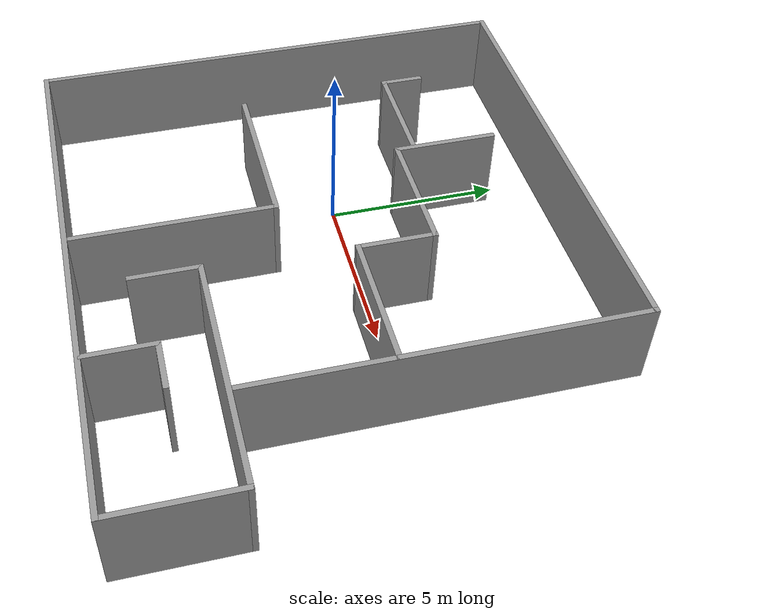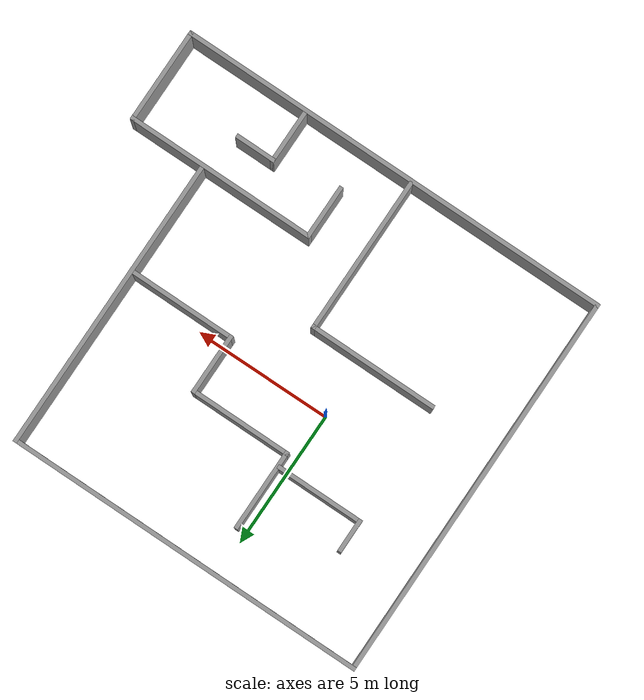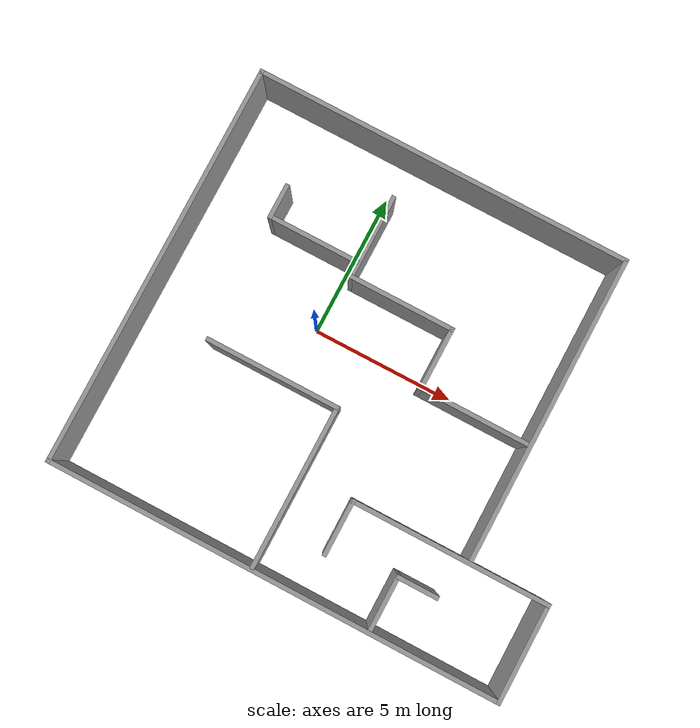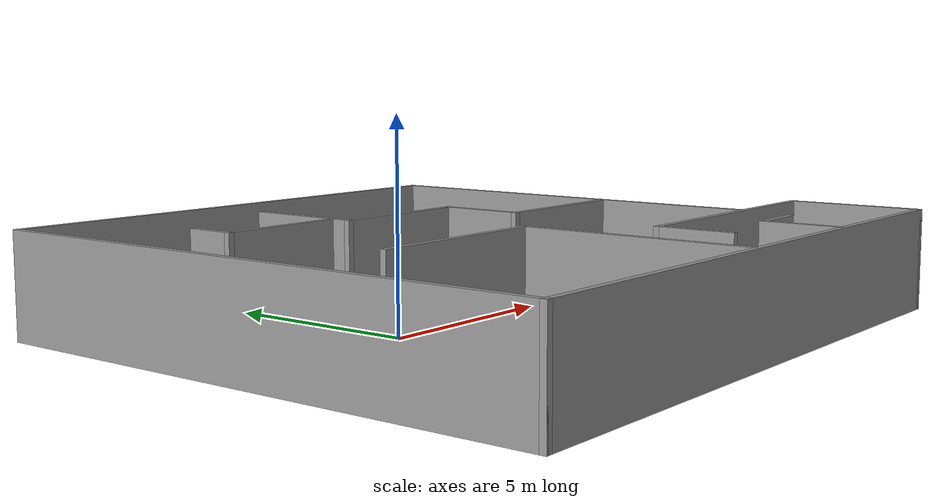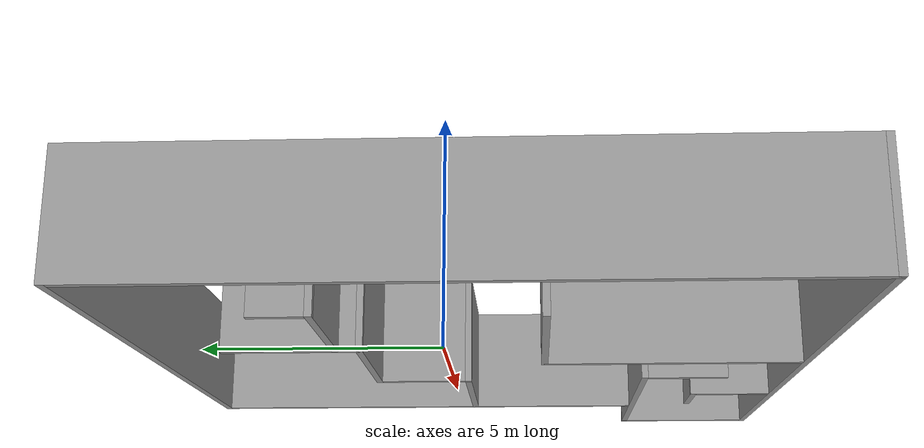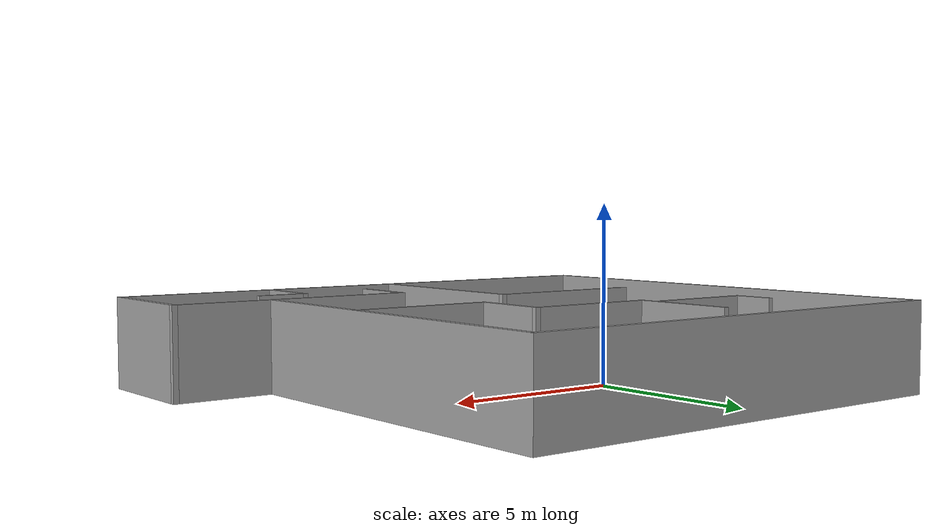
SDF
<?xml version='1.0'?>
<sdf version='1.6'>
  <model name='room_test'>
    <pose>2.605 -0.74 0 0 -0 0</pose>
    <link name='Wall_12'>
      <collision name='Wall_12_Collision'>
        <geometry>
          <box>
            <size>14.25 0.15 2.5</size>
          </box>
        </geometry>
        <pose>0 0 1.25 0 -0 0</pose>
      </collision>
      <visual name='Wall_12_Visual'>
        <pose>0 0 1.25 0 -0 0</pose>
        <geometry>
          <box>
            <size>14.25 0.15 2.5</size>
          </box>
        </geometry>
        <material>
          <script>
            <uri>file://media/materials/scripts/gazebo.material</uri>
            <name>Gazebo/Grey</name>
          </script>
          <ambient>1 1 1 1</ambient>
        </material>
        <meta>
          <layer>0</layer>
        </meta>
      </visual>
      <pose>-7.925 -0 0 0 -0 1.5708</pose>
    </link>
    <link name='Wall_14'>
      <collision name='Wall_14_Collision'>
        <geometry>
          <box>
            <size>3.5 0.15 2.5</size>
          </box>
        </geometry>
        <pose>0 0 1.25 0 -0 0</pose>
      </collision>
      <visual name='Wall_14_Visual'>
        <pose>0 0 1.25 0 -0 0</pose>
        <geometry>
          <box>
            <size>3.5 0.15 2.5</size>
          </box>
        </geometry>
        <material>
          <script>
            <uri>file://media/materials/scripts/gazebo.material</uri>
            <name>Gazebo/Grey</name>
          </script>
          <ambient>1 1 1 1</ambient>
        </material>
        <meta>
          <layer>0</layer>
        </meta>
      </visual>
      <pose>7.925 -5.375 0 0 -0 1.5708</pose>
    </link>
    <link name='Wall_15'>
      <collision name='Wall_15_Collision'>
        <geometry>
          <box>
            <size>7 0.15 2.5</size>
          </box>
        </geometry>
        <pose>0 0 1.25 0 -0 0</pose>
      </collision>
      <visual name='Wall_15_Visual'>
        <pose>0 0 1.25 0 -0 0</pose>
        <geometry>
          <box>
            <size>7 0.15 2.5</size>
          </box>
        </geometry>
        <material>
          <script>
            <uri>file://media/materials/scripts/gazebo.material</uri>
            <name>Gazebo/Grey</name>
          </script>
          <ambient>1 1 1 1</ambient>
        </material>
        <meta>
          <layer>0</layer>
        </meta>
      </visual>
      <pose>4.5 -3.7 0 0 -0 3.14159</pose>
    </link>
    <link name='Wall_18'>
      <collision name='Wall_18_Collision'>
        <geometry>
          <box>
            <size>2 0.15 2.5</size>
          </box>
        </geometry>
        <pose>0 0 1.25 0 -0 0</pose>
      </collision>
      <visual name='Wall_18_Visual'>
        <pose>0 0 1.25 0 -0 0</pose>
        <geometry>
          <box>
            <size>2 0.15 2.5</size>
          </box>
        </geometry>
        <material>
          <script>
            <uri>file://media/materials/scripts/gazebo.material</uri>
            <name>Gazebo/Grey</name>
          </script>
          <ambient>1 1 1 1</ambient>
        </material>
        <meta>
          <layer>0</layer>
        </meta>
      </visual>
      <pose>3.405 -6.035 0 0 -0 1.5708</pose>
    </link>
    <link name='Wall_19'>
      <collision name='Wall_19_Collision'>
        <geometry>
          <box>
            <size>1.5 0.15 2.5</size>
          </box>
        </geometry>
        <pose>0 0 1.25 0 -0 0</pose>
      </collision>
      <visual name='Wall_19_Visual'>
        <pose>0 0 1.25 0 -0 0</pose>
        <geometry>
          <box>
            <size>1.5 0.15 2.5</size>
          </box>
        </geometry>
        <material>
          <script>
            <uri>file://media/materials/scripts/gazebo.material</uri>
            <name>Gazebo/Grey</name>
          </script>
          <ambient>1 1 1 1</ambient>
        </material>
        <meta>
          <layer>0</layer>
        </meta>
      </visual>
      <pose>4.08 -5.11 0 0 -0 0</pose>
    </link>
    <link name='Wall_21'>
      <collision name='Wall_21_Collision'>
        <geometry>
          <box>
            <size>2 0.15 2.5</size>
          </box>
        </geometry>
        <pose>0 0 1.25 0 -0 0</pose>
      </collision>
      <visual name='Wall_21_Visual'>
        <pose>0 0 1.25 0 -0 0</pose>
        <geometry>
          <box>
            <size>2 0.15 2.5</size>
          </box>
        </geometry>
        <material>
          <script>
            <uri>file://media/materials/scripts/gazebo.material</uri>
            <name>Gazebo/Grey</name>
          </script>
          <ambient>1 1 1 1</ambient>
        </material>
        <meta>
          <layer>0</layer>
        </meta>
      </visual>
      <pose>1.075 -4.625 0 0 -0 -1.5708</pose>
    </link>
    <link name='Wall_23'>
      <collision name='Wall_23_Collision'>
        <geometry>
          <box>
            <size>5.75 0.15 2.5</size>
          </box>
        </geometry>
        <pose>0 0 1.25 0 -0 0</pose>
      </collision>
      <visual name='Wall_23_Visual'>
        <pose>0 0 1.25 0 -0 0</pose>
        <geometry>
          <box>
            <size>5.75 0.15 2.5</size>
          </box>
        </geometry>
        <material>
          <script>
            <uri>file://media/materials/scripts/gazebo.material</uri>
            <name>Gazebo/Grey</name>
          </script>
          <ambient>1 1 1 1</ambient>
        </material>
        <meta>
          <layer>0</layer>
        </meta>
      </visual>
      <pose>-0.724999 -4.15 0 0 -0 1.5708</pose>
    </link>
    <link name='Wall_25'>
      <collision name='Wall_25_Collision'>
        <geometry>
          <box>
            <size>4.75 0.15 2.5</size>
          </box>
        </geometry>
        <pose>0 0 1.25 0 -0 0</pose>
      </collision>
      <visual name='Wall_25_Visual'>
        <pose>0 0 1.25 0 -0 0</pose>
        <geometry>
          <box>
            <size>4.75 0.15 2.5</size>
          </box>
        </geometry>
        <material>
          <script>
            <uri>file://media/materials/scripts/gazebo.material</uri>
            <name>Gazebo/Grey</name>
          </script>
          <ambient>1 1 1 1</ambient>
        </material>
        <meta>
          <layer>0</layer>
        </meta>
      </visual>
      <pose>-3.025 -1.35 0 0 -0 3.14159</pose>
    </link>
    <link name='Wall_27'>
      <collision name='Wall_27_Collision'>
        <geometry>
          <box>
            <size>13.25 0.15 2.5</size>
          </box>
        </geometry>
        <pose>0 0 1.25 0 -0 0</pose>
      </collision>
      <visual name='Wall_27_Visual'>
        <pose>0 0 1.25 0 -0 0</pose>
        <geometry>
          <box>
            <size>13.25 0.15 2.5</size>
          </box>
        </geometry>
        <material>
          <script>
            <uri>file://media/materials/scripts/gazebo.material</uri>
            <name>Gazebo/Grey</name>
          </script>
          <ambient>1 1 1 1</ambient>
        </material>
        <meta>
          <layer>0</layer>
        </meta>
      </visual>
      <pose>-1.375 7.05 0 0 -0 0</pose>
    </link>
    <link name='Wall_29'>
      <collision name='Wall_29_Collision'>
        <geometry>
          <box>
            <size>10.75 0.15 2.5</size>
          </box>
        </geometry>
        <pose>0 0 1.25 0 -0 0</pose>
      </collision>
      <visual name='Wall_29_Visual'>
        <pose>0 0 1.25 0 -0 0</pose>
        <geometry>
          <box>
            <size>10.75 0.15 2.5</size>
          </box>
        </geometry>
        <material>
          <script>
            <uri>file://media/materials/scripts/gazebo.material</uri>
            <name>Gazebo/Grey</name>
          </script>
          <ambient>1 1 1 1</ambient>
        </material>
        <meta>
          <layer>0</layer>
        </meta>
      </visual>
      <pose>5.175 1.75 0 0 -0 -1.5708</pose>
    </link>
    <link name='Wall_32'>
      <collision name='Wall_32_Collision'>
        <geometry>
          <box>
            <size>4 0.15 2.5</size>
          </box>
        </geometry>
        <pose>0 0 1.25 0 -0 0</pose>
      </collision>
      <visual name='Wall_32_Visual'>
        <pose>0 0 1.25 0 -0 0</pose>
        <geometry>
          <box>
            <size>4 0.15 2.5</size>
          </box>
        </geometry>
        <material>
          <script>
            <uri>file://media/materials/scripts/gazebo.material</uri>
            <name>Gazebo/Grey</name>
          </script>
          <ambient>1 1 1 1</ambient>
        </material>
        <meta>
          <layer>0</layer>
        </meta>
      </visual>
      <pose>3.24 0.43 0 0 -0 3.14159</pose>
    </link>
    <link name='Wall_33'>
      <collision name='Wall_33_Collision'>
        <geometry>
          <box>
            <size>2.25 0.15 2.5</size>
          </box>
        </geometry>
        <pose>0 0 1.25 0 -0 0</pose>
      </collision>
      <visual name='Wall_33_Visual'>
        <pose>0 0 1.25 0 -0 0</pose>
        <geometry>
          <box>
            <size>2.25 0.15 2.5</size>
          </box>
        </geometry>
        <material>
          <script>
            <uri>file://media/materials/scripts/gazebo.material</uri>
            <name>Gazebo/Grey</name>
          </script>
          <ambient>1 1 1 1</ambient>
        </material>
        <meta>
          <layer>0</layer>
        </meta>
      </visual>
      <pose>1.315 1.48 0 0 -0 1.5708</pose>
    </link>
    <link name='Wall_34'>
      <collision name='Wall_34_Collision'>
        <geometry>
          <box>
            <size>3.75 0.15 2.5</size>
          </box>
        </geometry>
        <pose>0 0 1.25 0 -0 0</pose>
      </collision>
      <visual name='Wall_34_Visual'>
        <pose>0 0 1.25 0 -0 0</pose>
        <geometry>
          <box>
            <size>3.75 0.15 2.5</size>
          </box>
        </geometry>
        <material>
          <script>
            <uri>file://media/materials/scripts/gazebo.material</uri>
            <name>Gazebo/Grey</name>
          </script>
          <ambient>1 1 1 1</ambient>
        </material>
        <meta>
          <layer>0</layer>
        </meta>
      </visual>
      <pose>-0.484999 2.53 0 0 -0 3.14159</pose>
    </link>
    <link name='Wall_35'>
      <collision name='Wall_35_Collision'>
        <geometry>
          <box>
            <size>3 0.15 2.5</size>
          </box>
        </geometry>
        <pose>0 0 1.25 0 -0 0</pose>
      </collision>
      <visual name='Wall_35_Visual'>
        <pose>0 0 1.25 0 -0 0</pose>
        <geometry>
          <box>
            <size>3 0.15 2.5</size>
          </box>
        </geometry>
        <material>
          <script>
            <uri>file://media/materials/scripts/gazebo.material</uri>
            <name>Gazebo/Grey</name>
          </script>
          <ambient>1 1 1 1</ambient>
        </material>
        <meta>
          <layer>0</layer>
        </meta>
      </visual>
      <pose>-2.285 3.955 0 0 -0 1.5708</pose>
    </link>
    <link name='Wall_37'>
      <collision name='Wall_37_Collision'>
        <geometry>
          <box>
            <size>3.25 0.15 2.5</size>
          </box>
        </geometry>
        <pose>0 0 1.25 0 -0 0</pose>
      </collision>
      <visual name='Wall_37_Visual'>
        <pose>0 0 1.25 0 -0 0</pose>
        <geometry>
          <box>
            <size>3.25 0.15 2.5</size>
          </box>
        </geometry>
        <material>
          <script>
            <uri>file://media/materials/scripts/gazebo.material</uri>
            <name>Gazebo/Grey</name>
          </script>
          <ambient>1 1 1 1</ambient>
        </material>
        <meta>
          <layer>0</layer>
        </meta>
      </visual>
      <pose>-3.905 3.03 0 0 -0 3.14159</pose>
    </link>
    <link name='Wall_38'>
      <collision name='Wall_38_Collision'>
        <geometry>
          <box>
            <size>1.25 0.15 2.5</size>
          </box>
        </geometry>
        <pose>0 0 1.25 0 -0 0</pose>
      </collision>
      <visual name='Wall_38_Visual'>
        <pose>0 0 1.25 0 -0 0</pose>
        <geometry>
          <box>
            <size>1.25 0.15 2.5</size>
          </box>
        </geometry>
        <material>
          <script>
            <uri>file://media/materials/scripts/gazebo.material</uri>
            <name>Gazebo/Grey</name>
          </script>
          <ambient>1 1 1 1</ambient>
        </material>
        <meta>
          <layer>0</layer>
        </meta>
      </visual>
      <pose>-5.455 3.58 0 0 -0 1.5708</pose>
    </link>
    <link name='Wall_8'>
      <collision name='Wall_8_Collision'>
        <geometry>
          <box>
            <size>16 0.15 2.5</size>
          </box>
        </geometry>
        <pose>0 0 1.25 0 -0 0</pose>
      </collision>
      <visual name='Wall_8_Visual'>
        <pose>0 0 1.25 0 -0 0</pose>
        <geometry>
          <box>
            <size>16 0.15 2.5</size>
          </box>
        </geometry>
        <material>
          <script>
            <uri>file://media/materials/scripts/gazebo.material</uri>
            <name>Gazebo/Grey</name>
          </script>
          <ambient>1 1 1 1</ambient>
        </material>
        <meta>
          <layer>0</layer>
        </meta>
      </visual>
      <pose>1e-06 -7.05 0 0 -0 0</pose>
    </link>
    <static>1</static>
  </model>
</sdf>
